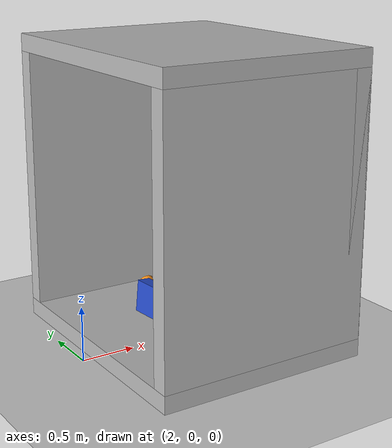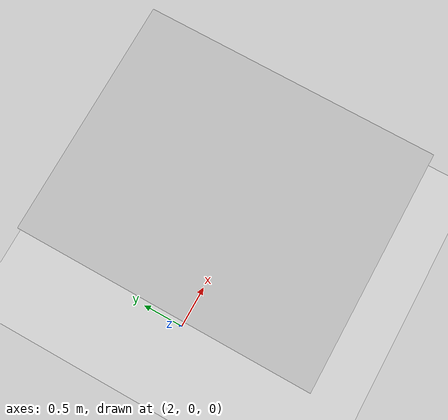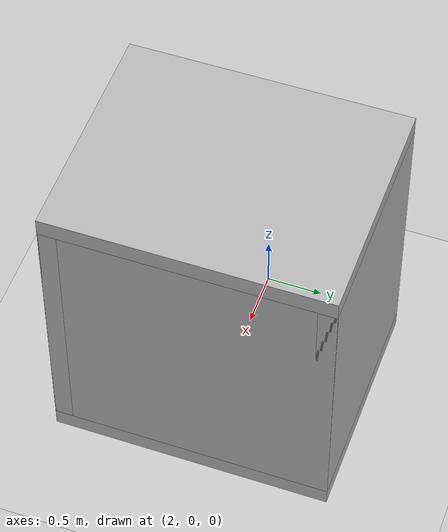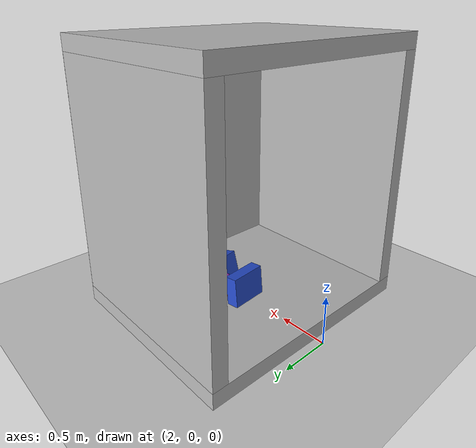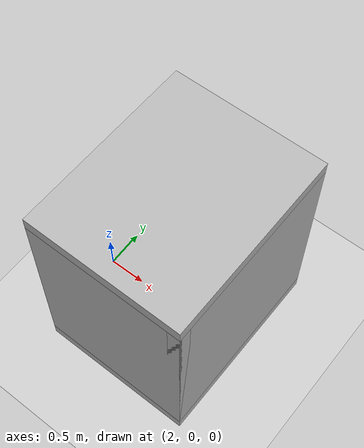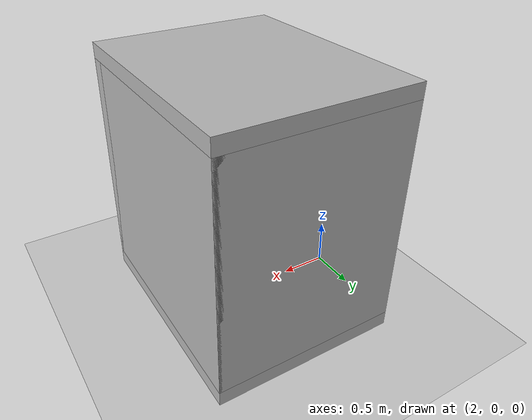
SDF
<sdf version="1.6">
 <world name="default">
  <light name="sun" type="directional">
   <pose>0 0 10 0 -0 0</pose>
   <diffuse>0.8 0.8 0.8 1</diffuse>
   <specular>0.1 0.1 0.1 1</specular>
   <attenuation>
    <range>1000</range>
    <constant>0.9</constant>
    <linear>0.01</linear>
    <quadratic>0.001</quadratic>
   </attenuation>
   <direction>-0.5 0.5 -1</direction>
  </light>
  <model name="ground_plane">
   <static>1</static>
   <link name="link">
    <collision name="collision">
     <geometry><plane><normal>0 0 1</normal><size>100 100</size></plane></geometry>
     <surface><friction><ode><mu>100</mu><mu2>50</mu2></ode></friction></surface>
    </collision>
    <visual name="visual">
     <cast_shadows>0</cast_shadows>
     <geometry><plane><normal>0 0 1</normal><size>100 100</size></plane></geometry>
     <material>
      <script><uri>file://media/materials/scripts/gazebo.material</uri><name>Gazebo/Grey</name></script>
     </material>
    </visual>
   </link>
  </model>
  <physics name="default_physics" default="0" type="ode">
   <real_time_update_rate>0</real_time_update_rate>
   <max_step_size>0.001</max_step_size>
   <real_time_factor>1</real_time_factor>
  </physics>
  <gravity>0 0 -9.8</gravity>
  <magnetic_field>6e-06 2.3e-05 -4.2e-05</magnetic_field>
  <atmosphere type="adiabatic"/>
  <scene><ambient>0.4 0.4 0.4 1</ambient><background>0.7 0.7 0.7 1</background><shadows>1</shadows></scene>
  <spherical_coordinates>
   <surface_model>EARTH_WGS84</surface_model>
   <latitude_deg>0</latitude_deg>
   <longitude_deg>0</longitude_deg>
   <elevation>0</elevation>
   <heading_deg>0</heading_deg>
  </spherical_coordinates>
  <model name="container">
   <link name="container">
    <inertial>
     <pose>0.22439 0 1.64098 0 -0 0</pose>
     <mass>205</mass>
     <inertia>
      <ixx>329.883</ixx>
      <ixy>1.59439e-15</ixy>
      <ixz>12.9249</ixz>
      <iyy>229.817</iyy>
      <iyz>1.16598e-14</iyz>
      <izz>267.609</izz>
     </inertia>
    </inertial>
    <collision name="container_back_collision">
     <pose>0.92 0 1.36 0 -0 0</pose>
     <geometry><box><size>0.16 2.45 2.4</size></box></geometry>
    </collision>
    <collision name="container_bottom_collision_1">
     <pose>0 0 0.08 0 -0 0</pose>
     <geometry><box><size>2 2.45 0.16</size></box></geometry>
    </collision>
    <collision name="container_left_collision_2">
     <pose>0 1.145 1.36 0 -0 0</pose>
     <geometry><box><size>2 0.16 2.4</size></box></geometry>
    </collision>
    <collision name="container_right_collision_3">
     <pose>0 -1.145 1.36 0 -0 0</pose>
     <geometry><box><size>2 0.16 2.4</size></box></geometry>
    </collision>
    <collision name="container_top_collision_4">
     <pose>0 0 2.64 0 -0 0</pose>
     <geometry><box><size>2 2.45 0.16</size></box></geometry>
    </collision>
    <visual name="container_back_visual">
     <pose>0.92 0 1.36 0 -0 0</pose>
     <geometry><box><size>0.16 2.45 2.4</size></box></geometry>
    </visual>
    <visual name="container_bottom_visual_1">
     <pose>0 0 0.08 0 -0 0</pose>
     <geometry><box><size>2 2.45 0.16</size></box></geometry>
    </visual>
    <visual name="container_left_visual_2">
     <pose>0 1.145 1.36 0 -0 0</pose>
     <geometry><box><size>2 0.16 2.4</size></box></geometry>
    </visual>
    <visual name="container_right_visual_3">
     <pose>0 -1.145 1.36 0 -0 0</pose>
     <geometry><box><size>2 0.16 2.4</size></box></geometry>
    </visual>
    <visual name="container_top_visual_4">
     <pose>0 0 2.64 0 -0 0</pose>
     <geometry><box><size>2 2.45 0.16</size></box></geometry>
    </visual>
   </link>
   <pose>3.08966 0.008889 0.000126 2e-06 0.000129 -0.002526</pose>
  </model>
  <model name="roblog-dhl-box-blue-simple-0-2224">
   <link name="link">
    <inertial>
     <mass>0.25</mass>
     <inertia>
      <ixx>0.00218083</ixx>
      <ixy>0</ixy>
      <ixz>0</ixz>
      <iyy>0.00473308</iyy>
      <iyz>0</iyz>
      <izz>0.00321375</izz>
     </inertia>
    </inertial>
    <collision name="link_collision"><geometry><box><size>0.372 0.126 0.298</size></box></geometry></collision>
    <visual name="link_visual">
     <geometry><box><size>0.372 0.126 0.298</size></box></geometry>
     <material>
      <script><name>Gazebo/Blue</name><uri>file://media/materials/scripts/gazebo.material</uri></script>
     </material>
    </visual>
   </link>
   <pose>2.84928 0.202564 0.314275 -0.091303 1.4e-05 -1.49136</pose>
  </model>
  <model name="roblog-dhl-box-blue-simple-1-2225">
   <link name="link">
    <inertial>
     <mass>0.25</mass>
     <inertia>
      <ixx>0.00218083</ixx>
      <ixy>0</ixy>
      <ixz>0</ixz>
      <iyy>0.00473308</iyy>
      <iyz>0</iyz>
      <izz>0.00321375</izz>
     </inertia>
    </inertial>
    <collision name="link_collision"><geometry><box><size>0.372 0.126 0.298</size></box></geometry></collision>
    <visual name="link_visual">
     <geometry><box><size>0.372 0.126 0.298</size></box></geometry>
     <material>
      <script><name>Gazebo/Blue</name><uri>file://media/materials/scripts/gazebo.material</uri></script>
     </material>
    </visual>
   </link>
   <pose>3.19487 0.211053 0.320306 -0.260327 2.4e-05 -1.3968</pose>
  </model>
  <model name="roblog-vanish-detergent-simple-2-2226">
   <link name="link">
    <inertial>
     <mass>0.08</mass>
     <inertia>
      <ixx>0.000324987</ixx>
      <ixy>0</ixy>
      <ixz>0</ixz>
      <iyy>0.000324987</iyy>
      <iyz>0</iyz>
      <izz>0.00011664</izz>
     </inertia>
    </inertial>
    <collision name="link_collision">
     <geometry><cylinder><length>0.2</length><radius>0.054</radius></cylinder></geometry>
    </collision>
    <visual name="link_visual">
     <geometry><cylinder><length>0.2</length><radius>0.054</radius></cylinder></geometry>
     <material>
      <script><name>Gazebo/PurpleGlow</name><uri>file://media/materials/scripts/gazebo.material</uri></script>
     </material>
    </visual>
    <velocity_decay><linear>0.005</linear><angular>0.005</angular></velocity_decay>
   </link>
   <pose>3.03298 0.186579 0.259192 -0.999742 -0.155533 -0.454806</pose>
  </model>
  <model name="roblog-maisels-barrel-simple-3-2227">
   <link name="link">
    <inertial>
     <mass>0.54</mass>
     <inertia>
      <ixx>0.00354312</ixx>
      <ixy>0</ixy>
      <ixz>0</ixz>
      <iyy>0.00354312</iyy>
      <iyz>0</iyz>
      <izz>0.00181548</izz>
     </inertia>
    </inertial>
    <collision name="link_collision">
     <geometry><cylinder><length>0.242</length><radius>0.082</radius></cylinder></geometry>
    </collision>
    <visual name="link_visual">
     <geometry><cylinder><length>0.242</length><radius>0.082</radius></cylinder></geometry>
     <material>
      <script><name>Gazebo/Orange</name><uri>file://media/materials/scripts/gazebo.material</uri></script>
     </material>
    </visual>
    <velocity_decay><linear>0.005</linear><angular>0.005</angular></velocity_decay>
   </link>
   <pose>2.98684 0.488814 0.287024 -1.04199 -0.510871 -0.289637</pose>
  </model>
 </world>
</sdf>
